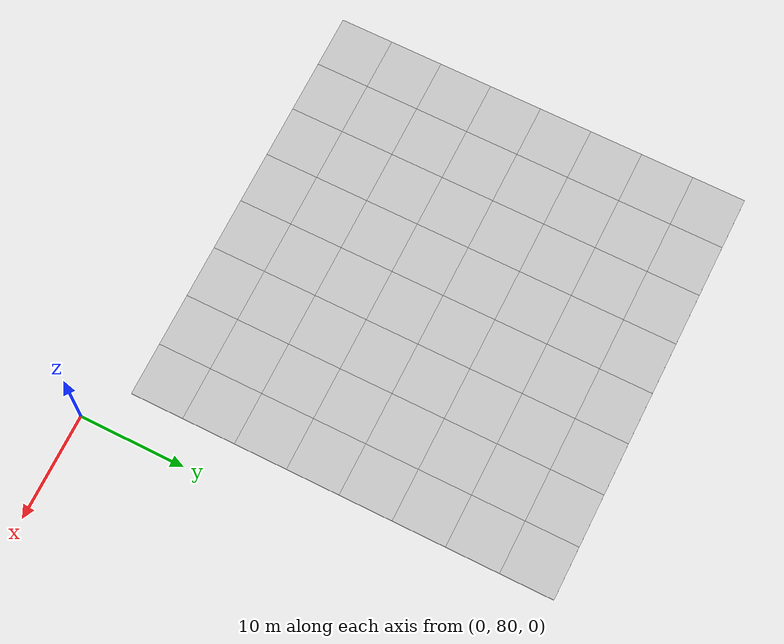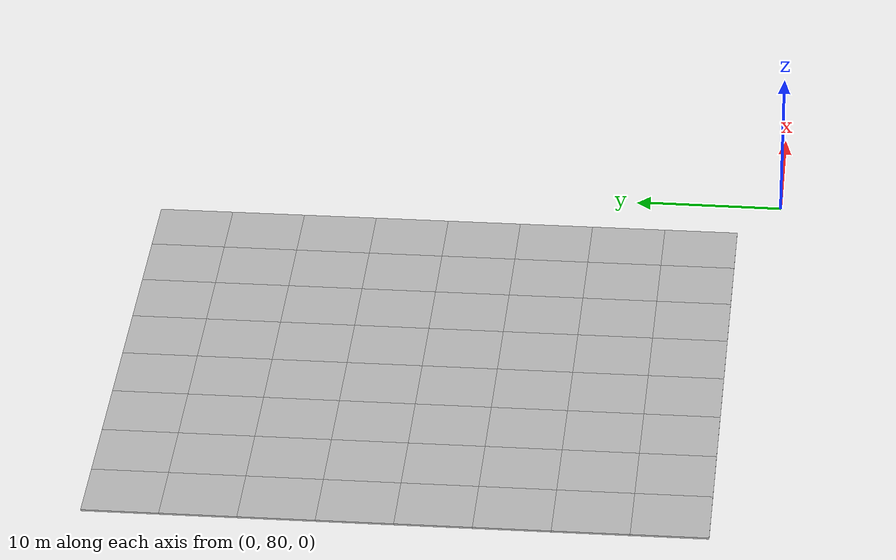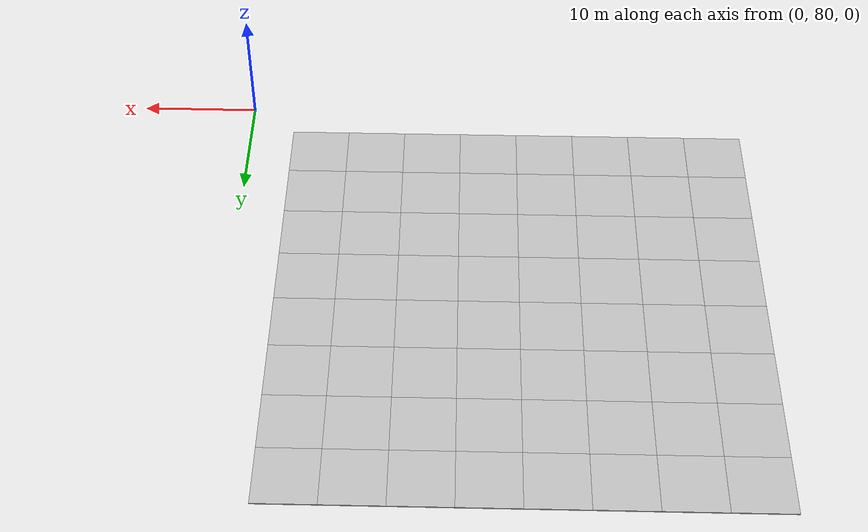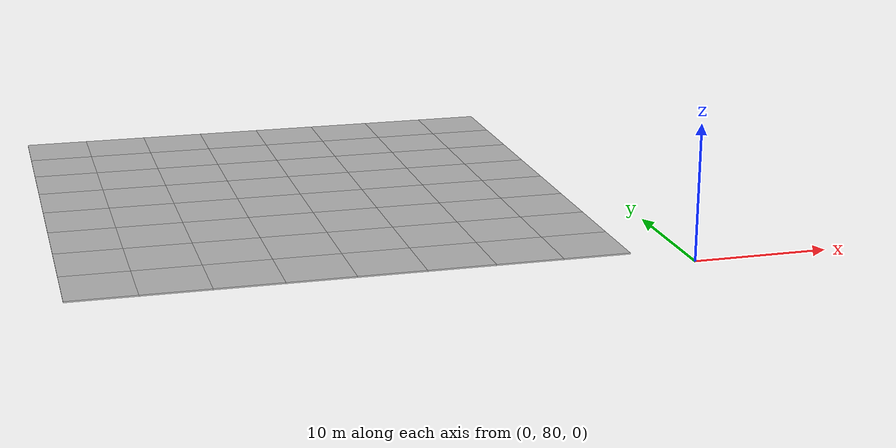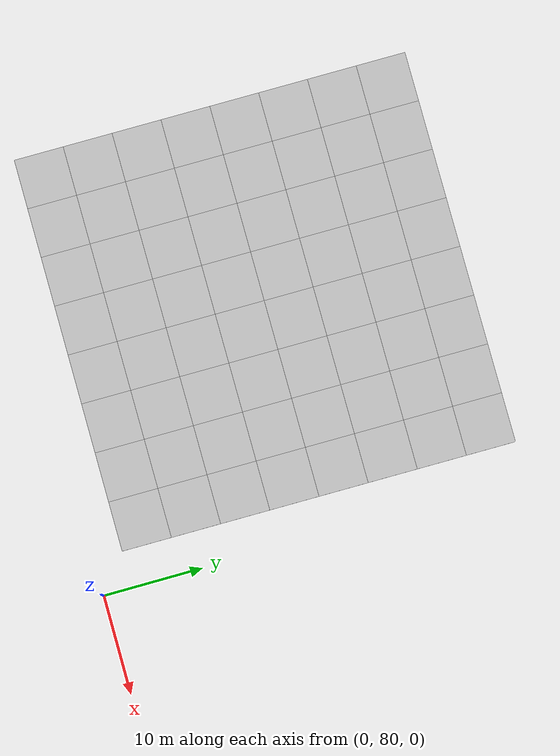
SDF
<sdf version="1.7">
 <world name="default">
  <model name="mud_plane_40x40_17">
   <model name="mud_plane_20x20">
    <model name="mud_plane">
     <static>1</static>
     <link name="link">
      <collision name="collision"><geometry><box><size>10 10 0.1</size></box></geometry></collision>
      <visual name="visual_1">
       <pose>-2.5 2.5 -0.05 0 -0 0</pose>
       <cast_shadows>0</cast_shadows>
       <geometry><box><size>5 5 0.1</size></box></geometry>
       <material>
        <script>
         <uri>model://mud_plane/materials/scripts</uri>
         <uri>model://mud_plane/materials/textures</uri>
         <name>vrc/mud</name>
        </script>
       </material>
      </visual>
      <visual name="visual_2">
       <pose>2.5 2.5 -0.05 0 -0 0</pose>
       <cast_shadows>0</cast_shadows>
       <geometry><box><size>5 5 0.1</size></box></geometry>
       <material>
        <script>
         <uri>model://mud_plane/materials/scripts</uri>
         <uri>model://mud_plane/materials/textures</uri>
         <name>vrc/mud</name>
        </script>
       </material>
      </visual>
      <visual name="visual_3">
       <pose>2.5 -2.5 -0.05 0 -0 0</pose>
       <cast_shadows>0</cast_shadows>
       <geometry><box><size>5 5 0.1</size></box></geometry>
       <material>
        <script>
         <uri>model://mud_plane/materials/scripts</uri>
         <uri>model://mud_plane/materials/textures</uri>
         <name>vrc/mud</name>
        </script>
       </material>
      </visual>
      <visual name="visual_4">
       <pose>-2.5 -2.5 -0.05 0 -0 0</pose>
       <cast_shadows>0</cast_shadows>
       <geometry><box><size>5 5 0.1</size></box></geometry>
       <material>
        <script>
         <uri>model://mud_plane/materials/scripts</uri>
         <uri>model://mud_plane/materials/textures</uri>
         <name>vrc/mud</name>
        </script>
       </material>
      </visual>
     </link>
     <pose>-4.99986 -4.99991 0 0 -0 0</pose>
    </model>
    <model name="mud_plane_0">
     <static>1</static>
     <link name="link">
      <collision name="collision"><geometry><box><size>10 10 0.1</size></box></geometry></collision>
      <visual name="visual_1">
       <pose>-2.5 2.5 -0.05 0 -0 0</pose>
       <cast_shadows>0</cast_shadows>
       <geometry><box><size>5 5 0.1</size></box></geometry>
       <material>
        <script>
         <uri>model://mud_plane/materials/scripts</uri>
         <uri>model://mud_plane/materials/textures</uri>
         <name>vrc/mud</name>
        </script>
       </material>
      </visual>
      <visual name="visual_2">
       <pose>2.5 2.5 -0.05 0 -0 0</pose>
       <cast_shadows>0</cast_shadows>
       <geometry><box><size>5 5 0.1</size></box></geometry>
       <material>
        <script>
         <uri>model://mud_plane/materials/scripts</uri>
         <uri>model://mud_plane/materials/textures</uri>
         <name>vrc/mud</name>
        </script>
       </material>
      </visual>
      <visual name="visual_3">
       <pose>2.5 -2.5 -0.05 0 -0 0</pose>
       <cast_shadows>0</cast_shadows>
       <geometry><box><size>5 5 0.1</size></box></geometry>
       <material>
        <script>
         <uri>model://mud_plane/materials/scripts</uri>
         <uri>model://mud_plane/materials/textures</uri>
         <name>vrc/mud</name>
        </script>
       </material>
      </visual>
      <visual name="visual_4">
       <pose>-2.5 -2.5 -0.05 0 -0 0</pose>
       <cast_shadows>0</cast_shadows>
       <geometry><box><size>5 5 0.1</size></box></geometry>
       <material>
        <script>
         <uri>model://mud_plane/materials/scripts</uri>
         <uri>model://mud_plane/materials/textures</uri>
         <name>vrc/mud</name>
        </script>
       </material>
      </visual>
     </link>
     <pose>-4.99946 4.99954 0 0 -0 0</pose>
    </model>
    <model name="mud_plane_1">
     <static>1</static>
     <link name="link">
      <collision name="collision"><geometry><box><size>10 10 0.1</size></box></geometry></collision>
      <visual name="visual_1">
       <pose>-2.5 2.5 -0.05 0 -0 0</pose>
       <cast_shadows>0</cast_shadows>
       <geometry><box><size>5 5 0.1</size></box></geometry>
       <material>
        <script>
         <uri>model://mud_plane/materials/scripts</uri>
         <uri>model://mud_plane/materials/textures</uri>
         <name>vrc/mud</name>
        </script>
       </material>
      </visual>
      <visual name="visual_2">
       <pose>2.5 2.5 -0.05 0 -0 0</pose>
       <cast_shadows>0</cast_shadows>
       <geometry><box><size>5 5 0.1</size></box></geometry>
       <material>
        <script>
         <uri>model://mud_plane/materials/scripts</uri>
         <uri>model://mud_plane/materials/textures</uri>
         <name>vrc/mud</name>
        </script>
       </material>
      </visual>
      <visual name="visual_3">
       <pose>2.5 -2.5 -0.05 0 -0 0</pose>
       <cast_shadows>0</cast_shadows>
       <geometry><box><size>5 5 0.1</size></box></geometry>
       <material>
        <script>
         <uri>model://mud_plane/materials/scripts</uri>
         <uri>model://mud_plane/materials/textures</uri>
         <name>vrc/mud</name>
        </script>
       </material>
      </visual>
      <visual name="visual_4">
       <pose>-2.5 -2.5 -0.05 0 -0 0</pose>
       <cast_shadows>0</cast_shadows>
       <geometry><box><size>5 5 0.1</size></box></geometry>
       <material>
        <script>
         <uri>model://mud_plane/materials/scripts</uri>
         <uri>model://mud_plane/materials/textures</uri>
         <name>vrc/mud</name>
        </script>
       </material>
      </visual>
     </link>
     <pose>4.99964 -4.99949 0 0 -0 0</pose>
    </model>
    <model name="mud_plane_2">
     <static>1</static>
     <link name="link">
      <collision name="collision"><geometry><box><size>10 10 0.1</size></box></geometry></collision>
      <visual name="visual_1">
       <pose>-2.5 2.5 -0.05 0 -0 0</pose>
       <cast_shadows>0</cast_shadows>
       <geometry><box><size>5 5 0.1</size></box></geometry>
       <material>
        <script>
         <uri>model://mud_plane/materials/scripts</uri>
         <uri>model://mud_plane/materials/textures</uri>
         <name>vrc/mud</name>
        </script>
       </material>
      </visual>
      <visual name="visual_2">
       <pose>2.5 2.5 -0.05 0 -0 0</pose>
       <cast_shadows>0</cast_shadows>
       <geometry><box><size>5 5 0.1</size></box></geometry>
       <material>
        <script>
         <uri>model://mud_plane/materials/scripts</uri>
         <uri>model://mud_plane/materials/textures</uri>
         <name>vrc/mud</name>
        </script>
       </material>
      </visual>
      <visual name="visual_3">
       <pose>2.5 -2.5 -0.05 0 -0 0</pose>
       <cast_shadows>0</cast_shadows>
       <geometry><box><size>5 5 0.1</size></box></geometry>
       <material>
        <script>
         <uri>model://mud_plane/materials/scripts</uri>
         <uri>model://mud_plane/materials/textures</uri>
         <name>vrc/mud</name>
        </script>
       </material>
      </visual>
      <visual name="visual_4">
       <pose>-2.5 -2.5 -0.05 0 -0 0</pose>
       <cast_shadows>0</cast_shadows>
       <geometry><box><size>5 5 0.1</size></box></geometry>
       <material>
        <script>
         <uri>model://mud_plane/materials/scripts</uri>
         <uri>model://mud_plane/materials/textures</uri>
         <name>vrc/mud</name>
        </script>
       </material>
      </visual>
     </link>
     <pose>4.99967 4.99986 0 0 -0 0</pose>
    </model>
    <static>0</static>
    <pose>-9.99895 9.99843 0 0 -0 0</pose>
   </model>
   <model name="mud_plane_20x20_0">
    <model name="mud_plane">
     <static>1</static>
     <link name="link">
      <collision name="collision"><geometry><box><size>10 10 0.1</size></box></geometry></collision>
      <visual name="visual_1">
       <pose>-2.5 2.5 -0.05 0 -0 0</pose>
       <cast_shadows>0</cast_shadows>
       <geometry><box><size>5 5 0.1</size></box></geometry>
       <material>
        <script>
         <uri>model://mud_plane/materials/scripts</uri>
         <uri>model://mud_plane/materials/textures</uri>
         <name>vrc/mud</name>
        </script>
       </material>
      </visual>
      <visual name="visual_2">
       <pose>2.5 2.5 -0.05 0 -0 0</pose>
       <cast_shadows>0</cast_shadows>
       <geometry><box><size>5 5 0.1</size></box></geometry>
       <material>
        <script>
         <uri>model://mud_plane/materials/scripts</uri>
         <uri>model://mud_plane/materials/textures</uri>
         <name>vrc/mud</name>
        </script>
       </material>
      </visual>
      <visual name="visual_3">
       <pose>2.5 -2.5 -0.05 0 -0 0</pose>
       <cast_shadows>0</cast_shadows>
       <geometry><box><size>5 5 0.1</size></box></geometry>
       <material>
        <script>
         <uri>model://mud_plane/materials/scripts</uri>
         <uri>model://mud_plane/materials/textures</uri>
         <name>vrc/mud</name>
        </script>
       </material>
      </visual>
      <visual name="visual_4">
       <pose>-2.5 -2.5 -0.05 0 -0 0</pose>
       <cast_shadows>0</cast_shadows>
       <geometry><box><size>5 5 0.1</size></box></geometry>
       <material>
        <script>
         <uri>model://mud_plane/materials/scripts</uri>
         <uri>model://mud_plane/materials/textures</uri>
         <name>vrc/mud</name>
        </script>
       </material>
      </visual>
     </link>
     <pose>-4.99986 -4.99991 0 0 -0 0</pose>
    </model>
    <model name="mud_plane_0">
     <static>1</static>
     <link name="link">
      <collision name="collision"><geometry><box><size>10 10 0.1</size></box></geometry></collision>
      <visual name="visual_1">
       <pose>-2.5 2.5 -0.05 0 -0 0</pose>
       <cast_shadows>0</cast_shadows>
       <geometry><box><size>5 5 0.1</size></box></geometry>
       <material>
        <script>
         <uri>model://mud_plane/materials/scripts</uri>
         <uri>model://mud_plane/materials/textures</uri>
         <name>vrc/mud</name>
        </script>
       </material>
      </visual>
      <visual name="visual_2">
       <pose>2.5 2.5 -0.05 0 -0 0</pose>
       <cast_shadows>0</cast_shadows>
       <geometry><box><size>5 5 0.1</size></box></geometry>
       <material>
        <script>
         <uri>model://mud_plane/materials/scripts</uri>
         <uri>model://mud_plane/materials/textures</uri>
         <name>vrc/mud</name>
        </script>
       </material>
      </visual>
      <visual name="visual_3">
       <pose>2.5 -2.5 -0.05 0 -0 0</pose>
       <cast_shadows>0</cast_shadows>
       <geometry><box><size>5 5 0.1</size></box></geometry>
       <material>
        <script>
         <uri>model://mud_plane/materials/scripts</uri>
         <uri>model://mud_plane/materials/textures</uri>
         <name>vrc/mud</name>
        </script>
       </material>
      </visual>
      <visual name="visual_4">
       <pose>-2.5 -2.5 -0.05 0 -0 0</pose>
       <cast_shadows>0</cast_shadows>
       <geometry><box><size>5 5 0.1</size></box></geometry>
       <material>
        <script>
         <uri>model://mud_plane/materials/scripts</uri>
         <uri>model://mud_plane/materials/textures</uri>
         <name>vrc/mud</name>
        </script>
       </material>
      </visual>
     </link>
     <pose>-4.99946 4.99954 0 0 -0 0</pose>
    </model>
    <model name="mud_plane_1">
     <static>1</static>
     <link name="link">
      <collision name="collision"><geometry><box><size>10 10 0.1</size></box></geometry></collision>
      <visual name="visual_1">
       <pose>-2.5 2.5 -0.05 0 -0 0</pose>
       <cast_shadows>0</cast_shadows>
       <geometry><box><size>5 5 0.1</size></box></geometry>
       <material>
        <script>
         <uri>model://mud_plane/materials/scripts</uri>
         <uri>model://mud_plane/materials/textures</uri>
         <name>vrc/mud</name>
        </script>
       </material>
      </visual>
      <visual name="visual_2">
       <pose>2.5 2.5 -0.05 0 -0 0</pose>
       <cast_shadows>0</cast_shadows>
       <geometry><box><size>5 5 0.1</size></box></geometry>
       <material>
        <script>
         <uri>model://mud_plane/materials/scripts</uri>
         <uri>model://mud_plane/materials/textures</uri>
         <name>vrc/mud</name>
        </script>
       </material>
      </visual>
      <visual name="visual_3">
       <pose>2.5 -2.5 -0.05 0 -0 0</pose>
       <cast_shadows>0</cast_shadows>
       <geometry><box><size>5 5 0.1</size></box></geometry>
       <material>
        <script>
         <uri>model://mud_plane/materials/scripts</uri>
         <uri>model://mud_plane/materials/textures</uri>
         <name>vrc/mud</name>
        </script>
       </material>
      </visual>
      <visual name="visual_4">
       <pose>-2.5 -2.5 -0.05 0 -0 0</pose>
       <cast_shadows>0</cast_shadows>
       <geometry><box><size>5 5 0.1</size></box></geometry>
       <material>
        <script>
         <uri>model://mud_plane/materials/scripts</uri>
         <uri>model://mud_plane/materials/textures</uri>
         <name>vrc/mud</name>
        </script>
       </material>
      </visual>
     </link>
     <pose>4.99964 -4.99949 0 0 -0 0</pose>
    </model>
    <model name="mud_plane_2">
     <static>1</static>
     <link name="link">
      <collision name="collision"><geometry><box><size>10 10 0.1</size></box></geometry></collision>
      <visual name="visual_1">
       <pose>-2.5 2.5 -0.05 0 -0 0</pose>
       <cast_shadows>0</cast_shadows>
       <geometry><box><size>5 5 0.1</size></box></geometry>
       <material>
        <script>
         <uri>model://mud_plane/materials/scripts</uri>
         <uri>model://mud_plane/materials/textures</uri>
         <name>vrc/mud</name>
        </script>
       </material>
      </visual>
      <visual name="visual_2">
       <pose>2.5 2.5 -0.05 0 -0 0</pose>
       <cast_shadows>0</cast_shadows>
       <geometry><box><size>5 5 0.1</size></box></geometry>
       <material>
        <script>
         <uri>model://mud_plane/materials/scripts</uri>
         <uri>model://mud_plane/materials/textures</uri>
         <name>vrc/mud</name>
        </script>
       </material>
      </visual>
      <visual name="visual_3">
       <pose>2.5 -2.5 -0.05 0 -0 0</pose>
       <cast_shadows>0</cast_shadows>
       <geometry><box><size>5 5 0.1</size></box></geometry>
       <material>
        <script>
         <uri>model://mud_plane/materials/scripts</uri>
         <uri>model://mud_plane/materials/textures</uri>
         <name>vrc/mud</name>
        </script>
       </material>
      </visual>
      <visual name="visual_4">
       <pose>-2.5 -2.5 -0.05 0 -0 0</pose>
       <cast_shadows>0</cast_shadows>
       <geometry><box><size>5 5 0.1</size></box></geometry>
       <material>
        <script>
         <uri>model://mud_plane/materials/scripts</uri>
         <uri>model://mud_plane/materials/textures</uri>
         <name>vrc/mud</name>
        </script>
       </material>
      </visual>
     </link>
     <pose>4.99967 4.99986 0 0 -0 0</pose>
    </model>
    <static>0</static>
    <pose>9.99933 9.9997 0 0 -0 0</pose>
   </model>
   <model name="mud_plane_20x20_1">
    <model name="mud_plane">
     <static>1</static>
     <link name="link">
      <collision name="collision"><geometry><box><size>10 10 0.1</size></box></geometry></collision>
      <visual name="visual_1">
       <pose>-2.5 2.5 -0.05 0 -0 0</pose>
       <cast_shadows>0</cast_shadows>
       <geometry><box><size>5 5 0.1</size></box></geometry>
       <material>
        <script>
         <uri>model://mud_plane/materials/scripts</uri>
         <uri>model://mud_plane/materials/textures</uri>
         <name>vrc/mud</name>
        </script>
       </material>
      </visual>
      <visual name="visual_2">
       <pose>2.5 2.5 -0.05 0 -0 0</pose>
       <cast_shadows>0</cast_shadows>
       <geometry><box><size>5 5 0.1</size></box></geometry>
       <material>
        <script>
         <uri>model://mud_plane/materials/scripts</uri>
         <uri>model://mud_plane/materials/textures</uri>
         <name>vrc/mud</name>
        </script>
       </material>
      </visual>
      <visual name="visual_3">
       <pose>2.5 -2.5 -0.05 0 -0 0</pose>
       <cast_shadows>0</cast_shadows>
       <geometry><box><size>5 5 0.1</size></box></geometry>
       <material>
        <script>
         <uri>model://mud_plane/materials/scripts</uri>
         <uri>model://mud_plane/materials/textures</uri>
         <name>vrc/mud</name>
        </script>
       </material>
      </visual>
      <visual name="visual_4">
       <pose>-2.5 -2.5 -0.05 0 -0 0</pose>
       <cast_shadows>0</cast_shadows>
       <geometry><box><size>5 5 0.1</size></box></geometry>
       <material>
        <script>
         <uri>model://mud_plane/materials/scripts</uri>
         <uri>model://mud_plane/materials/textures</uri>
         <name>vrc/mud</name>
        </script>
       </material>
      </visual>
     </link>
     <pose>-4.99986 -4.99991 0 0 -0 0</pose>
    </model>
    <model name="mud_plane_0">
     <static>1</static>
     <link name="link">
      <collision name="collision"><geometry><box><size>10 10 0.1</size></box></geometry></collision>
      <visual name="visual_1">
       <pose>-2.5 2.5 -0.05 0 -0 0</pose>
       <cast_shadows>0</cast_shadows>
       <geometry><box><size>5 5 0.1</size></box></geometry>
       <material>
        <script>
         <uri>model://mud_plane/materials/scripts</uri>
         <uri>model://mud_plane/materials/textures</uri>
         <name>vrc/mud</name>
        </script>
       </material>
      </visual>
      <visual name="visual_2">
       <pose>2.5 2.5 -0.05 0 -0 0</pose>
       <cast_shadows>0</cast_shadows>
       <geometry><box><size>5 5 0.1</size></box></geometry>
       <material>
        <script>
         <uri>model://mud_plane/materials/scripts</uri>
         <uri>model://mud_plane/materials/textures</uri>
         <name>vrc/mud</name>
        </script>
       </material>
      </visual>
      <visual name="visual_3">
       <pose>2.5 -2.5 -0.05 0 -0 0</pose>
       <cast_shadows>0</cast_shadows>
       <geometry><box><size>5 5 0.1</size></box></geometry>
       <material>
        <script>
         <uri>model://mud_plane/materials/scripts</uri>
         <uri>model://mud_plane/materials/textures</uri>
         <name>vrc/mud</name>
        </script>
       </material>
      </visual>
      <visual name="visual_4">
       <pose>-2.5 -2.5 -0.05 0 -0 0</pose>
       <cast_shadows>0</cast_shadows>
       <geometry><box><size>5 5 0.1</size></box></geometry>
       <material>
        <script>
         <uri>model://mud_plane/materials/scripts</uri>
         <uri>model://mud_plane/materials/textures</uri>
         <name>vrc/mud</name>
        </script>
       </material>
      </visual>
     </link>
     <pose>-4.99946 4.99954 0 0 -0 0</pose>
    </model>
    <model name="mud_plane_1">
     <static>1</static>
     <link name="link">
      <collision name="collision"><geometry><box><size>10 10 0.1</size></box></geometry></collision>
      <visual name="visual_1">
       <pose>-2.5 2.5 -0.05 0 -0 0</pose>
       <cast_shadows>0</cast_shadows>
       <geometry><box><size>5 5 0.1</size></box></geometry>
       <material>
        <script>
         <uri>model://mud_plane/materials/scripts</uri>
         <uri>model://mud_plane/materials/textures</uri>
         <name>vrc/mud</name>
        </script>
       </material>
      </visual>
      <visual name="visual_2">
       <pose>2.5 2.5 -0.05 0 -0 0</pose>
       <cast_shadows>0</cast_shadows>
       <geometry><box><size>5 5 0.1</size></box></geometry>
       <material>
        <script>
         <uri>model://mud_plane/materials/scripts</uri>
         <uri>model://mud_plane/materials/textures</uri>
         <name>vrc/mud</name>
        </script>
       </material>
      </visual>
      <visual name="visual_3">
       <pose>2.5 -2.5 -0.05 0 -0 0</pose>
       <cast_shadows>0</cast_shadows>
       <geometry><box><size>5 5 0.1</size></box></geometry>
       <material>
        <script>
         <uri>model://mud_plane/materials/scripts</uri>
         <uri>model://mud_plane/materials/textures</uri>
         <name>vrc/mud</name>
        </script>
       </material>
      </visual>
      <visual name="visual_4">
       <pose>-2.5 -2.5 -0.05 0 -0 0</pose>
       <cast_shadows>0</cast_shadows>
       <geometry><box><size>5 5 0.1</size></box></geometry>
       <material>
        <script>
         <uri>model://mud_plane/materials/scripts</uri>
         <uri>model://mud_plane/materials/textures</uri>
         <name>vrc/mud</name>
        </script>
       </material>
      </visual>
     </link>
     <pose>4.99964 -4.99949 0 0 -0 0</pose>
    </model>
    <model name="mud_plane_2">
     <static>1</static>
     <link name="link">
      <collision name="collision"><geometry><box><size>10 10 0.1</size></box></geometry></collision>
      <visual name="visual_1">
       <pose>-2.5 2.5 -0.05 0 -0 0</pose>
       <cast_shadows>0</cast_shadows>
       <geometry><box><size>5 5 0.1</size></box></geometry>
       <material>
        <script>
         <uri>model://mud_plane/materials/scripts</uri>
         <uri>model://mud_plane/materials/textures</uri>
         <name>vrc/mud</name>
        </script>
       </material>
      </visual>
      <visual name="visual_2">
       <pose>2.5 2.5 -0.05 0 -0 0</pose>
       <cast_shadows>0</cast_shadows>
       <geometry><box><size>5 5 0.1</size></box></geometry>
       <material>
        <script>
         <uri>model://mud_plane/materials/scripts</uri>
         <uri>model://mud_plane/materials/textures</uri>
         <name>vrc/mud</name>
        </script>
       </material>
      </visual>
      <visual name="visual_3">
       <pose>2.5 -2.5 -0.05 0 -0 0</pose>
       <cast_shadows>0</cast_shadows>
       <geometry><box><size>5 5 0.1</size></box></geometry>
       <material>
        <script>
         <uri>model://mud_plane/materials/scripts</uri>
         <uri>model://mud_plane/materials/textures</uri>
         <name>vrc/mud</name>
        </script>
       </material>
      </visual>
      <visual name="visual_4">
       <pose>-2.5 -2.5 -0.05 0 -0 0</pose>
       <cast_shadows>0</cast_shadows>
       <geometry><box><size>5 5 0.1</size></box></geometry>
       <material>
        <script>
         <uri>model://mud_plane/materials/scripts</uri>
         <uri>model://mud_plane/materials/textures</uri>
         <name>vrc/mud</name>
        </script>
       </material>
      </visual>
     </link>
     <pose>4.99967 4.99986 0 0 -0 0</pose>
    </model>
    <static>0</static>
    <pose>9.9993 -9.99877 0 0 -0 0</pose>
   </model>
   <model name="mud_plane_20x20_2">
    <model name="mud_plane">
     <static>1</static>
     <link name="link">
      <collision name="collision"><geometry><box><size>10 10 0.1</size></box></geometry></collision>
      <visual name="visual_1">
       <pose>-2.5 2.5 -0.05 0 -0 0</pose>
       <cast_shadows>0</cast_shadows>
       <geometry><box><size>5 5 0.1</size></box></geometry>
       <material>
        <script>
         <uri>model://mud_plane/materials/scripts</uri>
         <uri>model://mud_plane/materials/textures</uri>
         <name>vrc/mud</name>
        </script>
       </material>
      </visual>
      <visual name="visual_2">
       <pose>2.5 2.5 -0.05 0 -0 0</pose>
       <cast_shadows>0</cast_shadows>
       <geometry><box><size>5 5 0.1</size></box></geometry>
       <material>
        <script>
         <uri>model://mud_plane/materials/scripts</uri>
         <uri>model://mud_plane/materials/textures</uri>
         <name>vrc/mud</name>
        </script>
       </material>
      </visual>
      <visual name="visual_3">
       <pose>2.5 -2.5 -0.05 0 -0 0</pose>
       <cast_shadows>0</cast_shadows>
       <geometry><box><size>5 5 0.1</size></box></geometry>
       <material>
        <script>
         <uri>model://mud_plane/materials/scripts</uri>
         <uri>model://mud_plane/materials/textures</uri>
         <name>vrc/mud</name>
        </script>
       </material>
      </visual>
      <visual name="visual_4">
       <pose>-2.5 -2.5 -0.05 0 -0 0</pose>
       <cast_shadows>0</cast_shadows>
       <geometry><box><size>5 5 0.1</size></box></geometry>
       <material>
        <script>
         <uri>model://mud_plane/materials/scripts</uri>
         <uri>model://mud_plane/materials/textures</uri>
         <name>vrc/mud</name>
        </script>
       </material>
      </visual>
     </link>
     <pose>-4.99986 -4.99991 0 0 -0 0</pose>
    </model>
    <model name="mud_plane_0">
     <static>1</static>
     <link name="link">
      <collision name="collision"><geometry><box><size>10 10 0.1</size></box></geometry></collision>
      <visual name="visual_1">
       <pose>-2.5 2.5 -0.05 0 -0 0</pose>
       <cast_shadows>0</cast_shadows>
       <geometry><box><size>5 5 0.1</size></box></geometry>
       <material>
        <script>
         <uri>model://mud_plane/materials/scripts</uri>
         <uri>model://mud_plane/materials/textures</uri>
         <name>vrc/mud</name>
        </script>
       </material>
      </visual>
      <visual name="visual_2">
       <pose>2.5 2.5 -0.05 0 -0 0</pose>
       <cast_shadows>0</cast_shadows>
       <geometry><box><size>5 5 0.1</size></box></geometry>
       <material>
        <script>
         <uri>model://mud_plane/materials/scripts</uri>
         <uri>model://mud_plane/materials/textures</uri>
         <name>vrc/mud</name>
        </script>
       </material>
      </visual>
      <visual name="visual_3">
       <pose>2.5 -2.5 -0.05 0 -0 0</pose>
       <cast_shadows>0</cast_shadows>
       <geometry><box><size>5 5 0.1</size></box></geometry>
       <material>
        <script>
         <uri>model://mud_plane/materials/scripts</uri>
         <uri>model://mud_plane/materials/textures</uri>
         <name>vrc/mud</name>
        </script>
       </material>
      </visual>
      <visual name="visual_4">
       <pose>-2.5 -2.5 -0.05 0 -0 0</pose>
       <cast_shadows>0</cast_shadows>
       <geometry><box><size>5 5 0.1</size></box></geometry>
       <material>
        <script>
         <uri>model://mud_plane/materials/scripts</uri>
         <uri>model://mud_plane/materials/textures</uri>
         <name>vrc/mud</name>
        </script>
       </material>
      </visual>
     </link>
     <pose>-4.99946 4.99954 0 0 -0 0</pose>
    </model>
    <model name="mud_plane_1">
     <static>1</static>
     <link name="link">
      <collision name="collision"><geometry><box><size>10 10 0.1</size></box></geometry></collision>
      <visual name="visual_1">
       <pose>-2.5 2.5 -0.05 0 -0 0</pose>
       <cast_shadows>0</cast_shadows>
       <geometry><box><size>5 5 0.1</size></box></geometry>
       <material>
        <script>
         <uri>model://mud_plane/materials/scripts</uri>
         <uri>model://mud_plane/materials/textures</uri>
         <name>vrc/mud</name>
        </script>
       </material>
      </visual>
      <visual name="visual_2">
       <pose>2.5 2.5 -0.05 0 -0 0</pose>
       <cast_shadows>0</cast_shadows>
       <geometry><box><size>5 5 0.1</size></box></geometry>
       <material>
        <script>
         <uri>model://mud_plane/materials/scripts</uri>
         <uri>model://mud_plane/materials/textures</uri>
         <name>vrc/mud</name>
        </script>
       </material>
      </visual>
      <visual name="visual_3">
       <pose>2.5 -2.5 -0.05 0 -0 0</pose>
       <cast_shadows>0</cast_shadows>
       <geometry><box><size>5 5 0.1</size></box></geometry>
       <material>
        <script>
         <uri>model://mud_plane/materials/scripts</uri>
         <uri>model://mud_plane/materials/textures</uri>
         <name>vrc/mud</name>
        </script>
       </material>
      </visual>
      <visual name="visual_4">
       <pose>-2.5 -2.5 -0.05 0 -0 0</pose>
       <cast_shadows>0</cast_shadows>
       <geometry><box><size>5 5 0.1</size></box></geometry>
       <material>
        <script>
         <uri>model://mud_plane/materials/scripts</uri>
         <uri>model://mud_plane/materials/textures</uri>
         <name>vrc/mud</name>
        </script>
       </material>
      </visual>
     </link>
     <pose>4.99964 -4.99949 0 0 -0 0</pose>
    </model>
    <model name="mud_plane_2">
     <static>1</static>
     <link name="link">
      <collision name="collision"><geometry><box><size>10 10 0.1</size></box></geometry></collision>
      <visual name="visual_1">
       <pose>-2.5 2.5 -0.05 0 -0 0</pose>
       <cast_shadows>0</cast_shadows>
       <geometry><box><size>5 5 0.1</size></box></geometry>
       <material>
        <script>
         <uri>model://mud_plane/materials/scripts</uri>
         <uri>model://mud_plane/materials/textures</uri>
         <name>vrc/mud</name>
        </script>
       </material>
      </visual>
      <visual name="visual_2">
       <pose>2.5 2.5 -0.05 0 -0 0</pose>
       <cast_shadows>0</cast_shadows>
       <geometry><box><size>5 5 0.1</size></box></geometry>
       <material>
        <script>
         <uri>model://mud_plane/materials/scripts</uri>
         <uri>model://mud_plane/materials/textures</uri>
         <name>vrc/mud</name>
        </script>
       </material>
      </visual>
      <visual name="visual_3">
       <pose>2.5 -2.5 -0.05 0 -0 0</pose>
       <cast_shadows>0</cast_shadows>
       <geometry><box><size>5 5 0.1</size></box></geometry>
       <material>
        <script>
         <uri>model://mud_plane/materials/scripts</uri>
         <uri>model://mud_plane/materials/textures</uri>
         <name>vrc/mud</name>
        </script>
       </material>
      </visual>
      <visual name="visual_4">
       <pose>-2.5 -2.5 -0.05 0 -0 0</pose>
       <cast_shadows>0</cast_shadows>
       <geometry><box><size>5 5 0.1</size></box></geometry>
       <material>
        <script>
         <uri>model://mud_plane/materials/scripts</uri>
         <uri>model://mud_plane/materials/textures</uri>
         <name>vrc/mud</name>
        </script>
       </material>
      </visual>
     </link>
     <pose>4.99967 4.99986 0 0 -0 0</pose>
    </model>
    <static>0</static>
    <pose>-9.99969 -9.99935 0 0 -0 0</pose>
   </model>
   <static>0</static>
   <pose>-23.7391 102.849 0 0 -0 0</pose>
  </model>
 </world>
</sdf>
